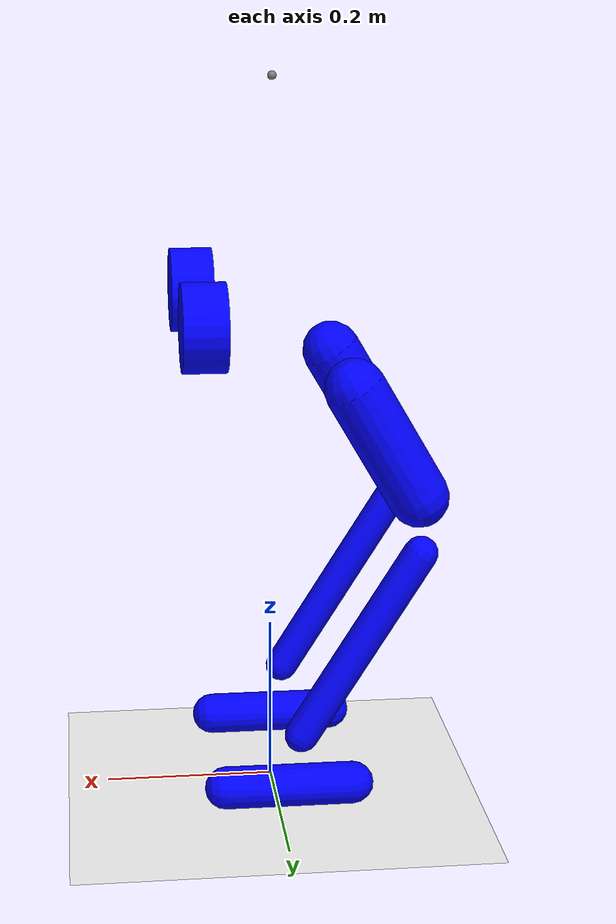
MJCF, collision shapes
<mujoco model="tron a1 solefoot feetonly flat terrain scene">
  <include file="sf_a1_mjx.xml"/>

  <statistic center="0 0 0.1" extent="0.8" meansize="0.04"/>

  <visual>
    <headlight diffuse=".8 .8 .8" ambient=".2 .2 .2" specular="1 1 1"/>
    <rgba force="1 0 0 1"/>
    <global azimuth="120" elevation="-20"/>
    <map force="0.01"/>
    <scale forcewidth="0.3" contactwidth="0.5" contactheight="0.2"/>
    <quality shadowsize="8192"/>
  </visual>

  <asset>
    <texture type="skybox" builtin="gradient" rgb1="1 1 1" rgb2="1 1 1" width="800" height="800"/>
    <texture type="2d" name="groundplane" builtin="checker" mark="edge" rgb1="1 1 1" rgb2="1 1 1" markrgb="0 0 0"
      width="300" height="300"/>
    <material name="groundplane" texture="groundplane" texuniform="true" texrepeat="5 5" reflectance="0"/>
  </asset>

  <worldbody>
    <geom name="floor" size="0 0 0.01" type="plane" material="groundplane" contype="1" conaffinity="0" priority="1"
      friction="0.6" condim="3"/>
  </worldbody>

  <include file="sensor.xml"/>

  <keyframe>
    <key name="home"
      qpos="0 0 0.84 1 0 0 0 0 0 0 0 0 0 0 0"
      ctrl="0 0 0 0 0 0 0 0"
    />
  </keyframe>
</mujoco>

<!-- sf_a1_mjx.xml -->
<mujoco model="SF_TRON1">
  <compiler angle="radian"/>

  <default>
    <default class="tron_a1">
      <default class="visual">
        <geom contype="0" conaffinity="0" group="0" type="mesh" rgba="0.9 0.9 0.9 1.0"/>
      </default>
      <default class="collision">
        <geom group="3" rgba="0 0 1 0.5"/>
      </default>
      <joint armature="0.01" damping="1." limited="true"/>
      <default class="motor">
        <position inheritrange="1.0" kp="50" forcerange='-80 80'/>
      </default>
    </default>
  </default>

  <asset>
    <mesh name="base_Link" file="assets/base_Link.STL" />
    <mesh name="abad_L_Link" file="assets/abad_L_Link.STL" />
    <mesh name="hip_L_Link" file="assets/hip_L_Link.STL" />
    <mesh name="knee_L_Link" file="assets/knee_L_Link.STL" />
    <mesh name="ankle_L_Link" file="assets/ankle_L_Link.STL" />
    <mesh name="abad_R_Link" file="assets/abad_R_Link.STL" />
    <mesh name="hip_R_Link" file="assets/hip_R_Link.STL" />
    <mesh name="knee_R_Link" file="assets/knee_R_Link.STL" />
    <mesh name="ankle_R_Link" file="assets/ankle_R_Link.STL" />
  </asset>

  <option timestep="0.001"/>

  <worldbody>
    <body name="base_Link" childclass="tron_a1" pos="0 0 0.85">
      <inertial pos="0.0457123 0.000139854 -0.163809" quat="0.972578 -0.00615364 -0.232461 0.00398682" mass="9.595" diaginertia="0.154712 0.11093 0.0846371" />
      <joint type="free" limited="false" damping="0.0000" stiffness="0.0000" armature="0"/>
      <site name="imu"/>
      <geom class="visual" rgba="0.79216 0.81961 0.93333 1" mesh="base_Link" />

      <body name="abad_L_Link" pos="0.05556 0.105 -0.2602">
        <inertial pos="-0.06977 0.04479 0.00057" quat="0.595024 0.579772 0.394141 0.393019" mass="1.469" diaginertia="0.00252289 0.00208104 0.00139163" />
        <joint name="abad_L_Joint" axis="1 0 0" range="-0.38397 1.39626" />
        <geom class="visual" rgba="0.79216 0.81961 0.93333 1" mesh="abad_L_Link" />
        <geom name="abad_L_collision" size="0.05 0.025" pos="0.03 0 0" quat="0.500398 0.5 0.499602 0.5" type="cylinder" class="collision" />

        <body name="hip_L_Link" pos="-0.077 0.0205 0">
          <inertial pos="-0.02869 -0.0477 -0.03992" quat="0.853885 0.192797 0.226903 0.426877" mass="2.3" diaginertia="0.0233264 0.0230229 0.00277548" />
          <joint name="hip_L_Joint" axis="0 1 0" range="-1.01229 1.39626" />
          <geom class="visual" rgba="1 1 1 1" mesh="hip_L_Link" />
          <geom name="hip_L_collision" size="0.035 0.075" pos="-0.1 -0.03 -0.14" quat="0.965093 0 0.261909 0" type="capsule" class="collision" />

          <body name="knee_L_Link" pos="-0.15 -0.0205 -0.25981">
            <inertial pos="0.11452 0.0013 -0.19367" quat="0.965543 0.00476557 -0.259713 -0.0159388" mass="1.22" diaginertia="0.0144103 0.0143581 0.00061582" />
            <joint name="knee_L_Joint" axis="0 -1 0" range="-0.872665 1.36136" />
            <geom class="visual" rgba="0.79216 0.81961 0.93333 1" mesh="knee_L_Link" />
            <geom name="knee_L_collision" size="0.02 0.13" pos="0.078 0 -0.12" quat="0.962425 0 -0.271547 0" type="capsule" class="collision" />

            <body name="ankle_L_Link" pos="0.15 0 -0.25981">
              <inertial pos="0.01074 -0.00061 -0.03314" quat="0.013732 0.694322 0.0150212 0.719377" mass="0.62" diaginertia="0.0019759 0.00181179 0.000523633" />
              <joint name="ankle_L_Joint" axis="0 -1 0" range="-1.15192 1.5708" frictionloss="0.01" />
              <geom class="visual" rgba="0.26667 0.26667 0.26667 1" mesh="ankle_L_Link" />
              <geom name="ankle_L_collision" size="0.025 0.075" pos="0.01 0 -0.035" quat="0.707 0 0.707 0" type="capsule" class="collision"/>
              <site name="l_foot" pos="0.01 0 -0.04"/>
            </body>
          </body>
        </body>
      </body>
      <body name="abad_R_Link" pos="0.05556 -0.105 -0.2602">
        <inertial pos="-0.06977 -0.04479 0.00057" quat="0.393019 0.394141 0.579772 0.595024" mass="1.469" diaginertia="0.00252289 0.00208104 0.00139163" />
        <joint name="abad_R_Joint" axis="1 0 0" range="-1.39626 0.38397" />
        <geom class="visual" rgba="0.79216 0.81961 0.93333 1" mesh="abad_R_Link" />
        <geom name="abad_R_collision" size="0.05 0.025" pos="0.03 0 0" quat="0.500398 0.5 0.499602 0.5" type="cylinder" class="collision"/>

        <body name="hip_R_Link" pos="-0.077 -0.0205 0">
          <inertial pos="-0.02869 0.0477 -0.03992" quat="0.426877 0.226903 0.192797 0.853885" mass="2.3" diaginertia="0.0233264 0.0230229 0.00277548" />
          <joint name="hip_R_Joint" axis="0 -1 0" range="-1.39626 1.01229" />
          <geom class="visual" rgba="1 1 1 1" mesh="hip_R_Link" />
          <geom name="hip_R_collision" size="0.035 0.075" pos="-0.1 0.03 -0.14" quat="0.965093 0 0.261909 0" type="capsule" class="collision"/>

          <body name="knee_R_Link" pos="-0.15 0.0205 -0.25981">
            <inertial pos="0.11452 -0.0013 -0.19367" quat="0.965543 -0.00476557 -0.259713 0.0159388" mass="1.22" diaginertia="0.0144103 0.0143581 0.00061582" />
            <joint name="knee_R_Joint" axis="0 1 0" range="-1.36136 0.872665" />
            <geom class="visual" rgba="0.79216 0.81961 0.93333 1" mesh="knee_R_Link" />
            <geom name="knee_R_collision" size="0.02 0.13" pos="0.078 0 -0.12" quat="0.962425 0 -0.271547 0" type="capsule" class="collision"/>

            <body name="ankle_R_Link" pos="0.15 0 -0.25981">
              <inertial pos="0.01074 0.00061 -0.03314" quat="-0.013732 0.694322 -0.0150212 0.719377" mass="0.62" diaginertia="0.0019759 0.00181179 0.000523633" />
              <joint name="ankle_R_Joint" axis="0 -1 0" range="-1.15192 1.5708" frictionloss="0.01" />
              <geom class="visual" rgba="0.26667 0.26667 0.26667 1" mesh="ankle_R_Link" />
              <geom name="ankle_R_collision" size="0.025 0.075" pos="0.01 0 -0.035" quat="0.707 0 0.707 0" type="capsule" class="collision"/>
              <site name="r_foot" pos="0.01 0 -0.04"/>
            </body>
          </body>
        </body>
      </body>
    </body>
  </worldbody>

  <actuator>
    <position class="motor" name="abad_L_Joint" joint="abad_L_Joint"/>
    <position class="motor" name="hip_L_Joint" joint="hip_L_Joint"/>
    <position class="motor" name="knee_L_Joint" joint="knee_L_Joint"/>
    <position class="motor" name="ankle_L_Joint" joint="ankle_L_Joint" forcerange='-20 20'/>
    <position class="motor" name="abad_R_Joint" joint="abad_R_Joint"/>
    <position class="motor" name="hip_R_Joint" joint="hip_R_Joint"/>
    <position class="motor" name="knee_R_Joint" joint="knee_R_Joint"/>
    <position class="motor" name="ankle_R_Joint" joint="ankle_R_Joint" forcerange='-20 20'/>
  </actuator>

  <sensor>
    <gyro site="imu" name="gyro"/>
    <velocimeter site="imu" name="local_linvel"/>
    <accelerometer site="imu" name="accelerometer"/>
    <framezaxis objtype="site" objname="imu" name="upvector"/>
    <framelinvel objtype="site" objname="imu" name="global_linvel"/>
    <frameangvel objtype="site" objname="imu" name="global_angvel"/>
    <framepos objtype="site" objname="imu" name="position"/>
    <framequat objtype="site" objname="imu" name="orientation"/>
    <framelinvel objtype="site" objname="l_foot" name="l_foot_global_linvel"/>
    <framelinvel objtype="site" objname="r_foot" name="r_foot_global_linvel"/>
    <framezaxis objtype="site" objname="l_foot" name="l_foot_upvector"/>
    <framezaxis objtype="site" objname="r_foot" name="r_foot_upvector"/>
    <framepos objtype="site" objname="l_foot" name="l_foot_pos"/>
    <framepos objtype="site" objname="r_foot" name="r_foot_pos"/>
  </sensor>

</mujoco>

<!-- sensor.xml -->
<mujoco>
  <sensor>
    <contact name="ankle_L_collision_floor_found" geom1="ankle_L_collision" geom2="floor" reduce="mindist" num="1" data="found"/>
    <contact name="ankle_R_collision_floor_found" geom1="ankle_R_collision" geom2="floor" reduce="mindist" num="1" data="found"/>
  </sensor>
</mujoco>
